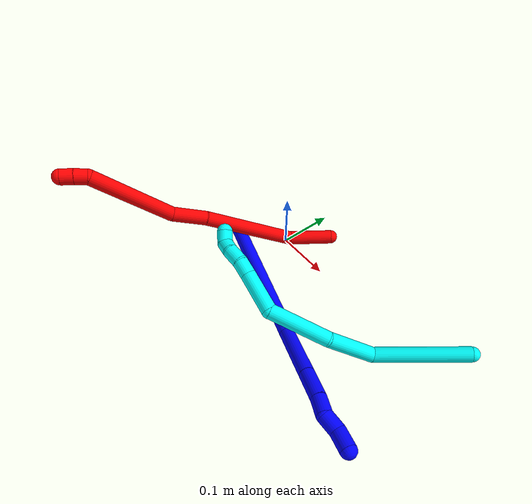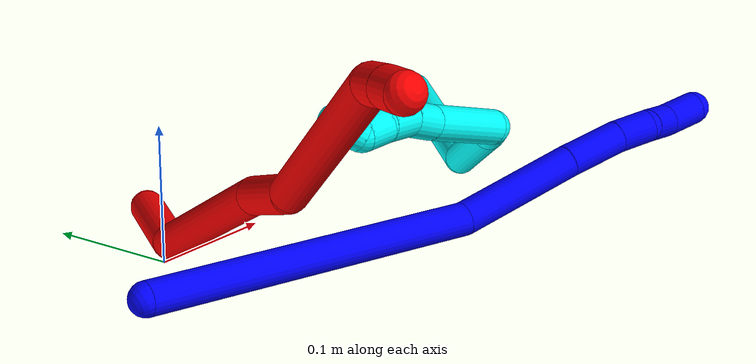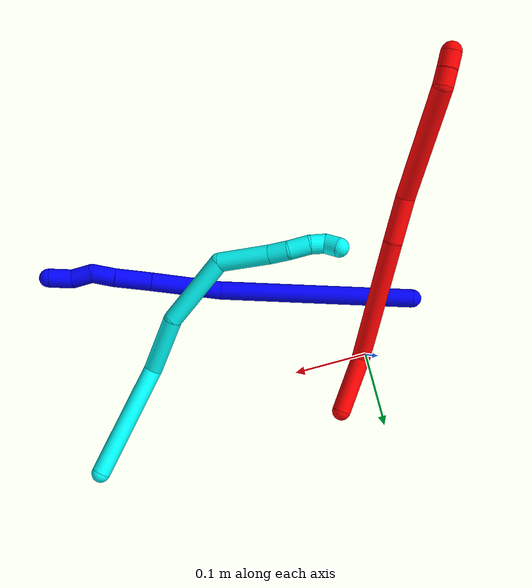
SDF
<sdf version="1.7">
 <world name="default">
  <plugin name="TubeGeneratorPlugin" filename="libtube_generator_plugin.so"/>
  <model name="photoneo_s_sensor">
   <static>1</static>
   <pose>0 0 2 1.57079 1.57079 3.14159</pose>
   <link name="link">
    <inertial><mass>0.1</mass></inertial>
    <sensor name="sensor" type="depth">
     <update_rate>30</update_rate>
     <camera>
      <horizontal_fov>1.22</horizontal_fov>
      <image><width>1920</width><height>1200</height><format>B8G8R8</format></image>
      <clip><near>0.1</near><far>4</far></clip>
      <depth_camera><output>points</output></depth_camera>
     </camera>
     <plugin name="camera_plugin" filename="libgazebo_ros_depth_camera.so">
      <baseline>0.2</baseline>
      <alwaysOn>1</alwaysOn>
      <updateRate>0.0</updateRate>
      <cameraName>camera_ir</cameraName>
      <imageTopicName>/camera/color/image_raw</imageTopicName>
      <cameraInfoTopicName>/camera/color/camera_info</cameraInfoTopicName>
      <depthImageTopicName>/camera/depth/image_raw</depthImageTopicName>
      <depthImageCameraInfoTopicName>/camera/depth/camera_info</depthImageCameraInfoTopicName>
      <pointCloudTopicName>/camera/depth/points</pointCloudTopicName>
      <frameName>fr_optical</frameName>
      <pointCloudCutoff>0.1</pointCloudCutoff>
      <pointCloudCutoffMax>2.0</pointCloudCutoffMax>
      <distortionK1>0</distortionK1>
      <distortionK2>0</distortionK2>
      <distortionK3>0</distortionK3>
      <distortionT1>0</distortionT1>
      <distortionT2>0</distortionT2>
      <CxPrime>0</CxPrime>
      <Cx>0</Cx>
      <Cy>0</Cy>
      <focalLength>0</focalLength>
      <hackBaseline>0</hackBaseline>
     </plugin>
    </sensor>
   </link>
  </model>
  <gravity>0 0 -9.8</gravity>
  <magnetic_field>6e-06 2.3e-05 -4.2e-05</magnetic_field>
  <atmosphere type="adiabatic"/>
  <physics name="default_physics" default="0" type="ode">
   <max_step_size>0.003</max_step_size>
   <real_time_factor>1</real_time_factor>
   <real_time_update_rate>1000</real_time_update_rate>
   <max_contacts>10000</max_contacts>
   <ode>
    <solver>
     <type>quick</type>
     <iters>100</iters>
     <sor>1.3</sor>
     <use_dynamic_moi_rescaling>0</use_dynamic_moi_rescaling>
    </solver>
    <constraints>
     <contact_max_correcting_vel>0</contact_max_correcting_vel>
     <contact_surface_layer>0.001</contact_surface_layer>
     <cfm>0</cfm>
     <erp>0.2</erp>
    </constraints>
   </ode>
  </physics>
  <scene><ambient>0.4 0.4 0.4 1</ambient><background>0.7 0.7 0.7 1</background><shadows>0</shadows></scene>
  <audio><device>default</device></audio>
  <spherical_coordinates>
   <surface_model>EARTH_WGS84</surface_model>
   <latitude_deg>0</latitude_deg>
   <longitude_deg>0</longitude_deg>
   <elevation>0</elevation>
   <heading_deg>0</heading_deg>
  </spherical_coordinates>
  <model name="bin">
   <static>1</static>
   <link name="bottom">
    <collision name="collision-bottom">
     <pose>0 0 -0.01 0 -0 0</pose>
     <geometry><box><size>0.8 0.6 0.02</size></box></geometry>
     <surface>
      <friction><ode><mu>100</mu><mu2>100</mu2></ode></friction>
      <contact><collide_bitmask>65535</collide_bitmask></contact>
     </surface>
    </collision>
   </link>
   <link name="west_wall">
    <collision name="collision-west_wall">
     <pose>-0.41 0 0.1 0 -0 0</pose>
     <geometry><box><size>0.02 0.6 0.2</size></box></geometry>
     <surface>
      <friction><ode><mu>100</mu><mu2>100</mu2></ode></friction>
      <contact><collide_bitmask>65535</collide_bitmask></contact>
     </surface>
    </collision>
   </link>
   <link name="east_wall">
    <collision name="collision-east_wall">
     <pose>0.41 0 0.1 0 -0 0</pose>
     <geometry><box><size>0.02 0.6 0.2</size></box></geometry>
     <surface>
      <friction><ode><mu>100</mu><mu2>100</mu2></ode></friction>
      <contact><collide_bitmask>65535</collide_bitmask></contact>
     </surface>
    </collision>
   </link>
   <link name="south_wall">
    <collision name="collision-south_wall">
     <pose>0 -0.31 0.1 0 -0 0</pose>
     <geometry><box><size>0.8 0.02 0.2</size></box></geometry>
     <surface>
      <friction><ode><mu>100</mu><mu2>100</mu2></ode></friction>
      <contact><collide_bitmask>65535</collide_bitmask></contact>
     </surface>
    </collision>
   </link>
   <link name="north_wall">
    <collision name="collision-north_wall">
     <pose>0 0.31 0.1 0 -0 0</pose>
     <geometry><box><size>0.8 0.02 0.2</size></box></geometry>
     <surface>
      <friction><ode><mu>100</mu><mu2>100</mu2></ode></friction>
      <contact><collide_bitmask>65535</collide_bitmask></contact>
     </surface>
    </collision>
   </link>
  </model>
  <model name="1">
   <static>0</static>
   <link name="1">
    <collision name="collision-cylinder-e_1_1_4">
     <pose>0.038817 -0.012218 0.126364 0.096391 0.29673 0.014418</pose>
     <geometry><cylinder><radius>0.0125</radius><length>0.26551</length></cylinder></geometry>
     <surface>
      <friction><ode><mu>1.16</mu><mu2>1.16</mu2><slip1>0</slip1><slip2>0</slip2></ode></friction>
      <contact><ode><kp>1e+06</kp><kd>1</kd><max_vel>0</max_vel><min_depth>0.001</min_depth></ode></contact>
     </surface>
    </collision>
    <visual name="visual-cylinder-e_1_1_4">
     <pose>0.038817 -0.012218 0.126364 0.096391 0.29673 0.014418</pose>
     <geometry><cylinder><radius>0.0125</radius><length>0.26551</length></cylinder></geometry>
     <material><ambient>0 0 1 1</ambient></material>
    </visual>
    <collision name="collision-cylinder-e_2_4_5">
     <pose>0.078218 -0.025592 0.301768 0.023552 0.011907 0.00014</pose>
     <geometry><cylinder><radius>0.0125</radius><length>0.098113</length></cylinder></geometry>
     <surface>
      <friction><ode><mu>1.16</mu><mu2>1.16</mu2><slip1>0</slip1><slip2>0</slip2></ode></friction>
      <contact><ode><kp>1e+06</kp><kd>1</kd><max_vel>0</max_vel><min_depth>0.001</min_depth></ode></contact>
     </surface>
    </collision>
    <visual name="visual-cylinder-e_2_4_5">
     <pose>0.078218 -0.025592 0.301768 0.023552 0.011907 0.00014</pose>
     <geometry><cylinder><radius>0.0125</radius><length>0.098113</length></cylinder></geometry>
     <material><ambient>0 0 1 1</ambient></material>
    </visual>
    <collision name="collision-cylinder-e_3_5_6">
     <pose>0.08026 -0.027569 0.374896 0.034118 0.060422 0.001031</pose>
     <geometry><cylinder><radius>0.0125</radius><length>0.048294</length></cylinder></geometry>
     <surface>
      <friction><ode><mu>1.16</mu><mu2>1.16</mu2><slip1>0</slip1><slip2>0</slip2></ode></friction>
      <contact><ode><kp>1e+06</kp><kd>1</kd><max_vel>0</max_vel><min_depth>0.001</min_depth></ode></contact>
     </surface>
    </collision>
    <visual name="visual-cylinder-e_3_5_6">
     <pose>0.08026 -0.027569 0.374896 0.034118 0.060422 0.001031</pose>
     <geometry><cylinder><radius>0.0125</radius><length>0.048294</length></cylinder></geometry>
     <material><ambient>0 0 1 1</ambient></material>
    </visual>
    <collision name="collision-cylinder-e_4_6_7">
     <pose>0.082941 -0.030534 0.413456 0.14702 0.083429 0.006147</pose>
     <geometry><cylinder><radius>0.0125</radius><length>0.029359</length></cylinder></geometry>
     <surface>
      <friction><ode><mu>1.16</mu><mu2>1.16</mu2><slip1>0</slip1><slip2>0</slip2></ode></friction>
      <contact><ode><kp>1e+06</kp><kd>1</kd><max_vel>0</max_vel><min_depth>0.001</min_depth></ode></contact>
     </surface>
    </collision>
    <visual name="visual-cylinder-e_4_6_7">
     <pose>0.082941 -0.030534 0.413456 0.14702 0.083429 0.006147</pose>
     <geometry><cylinder><radius>0.0125</radius><length>0.029359</length></cylinder></geometry>
     <material><ambient>0 0 1 1</ambient></material>
    </visual>
    <collision name="collision-cylinder-e_5_7_8">
     <pose>0.090947 -0.030714 0.439786 -0.164067 0.513688 -0.043182</pose>
     <geometry><cylinder><radius>0.0125</radius><length>0.027604</length></cylinder></geometry>
     <surface>
      <friction><ode><mu>1.16</mu><mu2>1.16</mu2><slip1>0</slip1><slip2>0</slip2></ode></friction>
      <contact><ode><kp>1e+06</kp><kd>1</kd><max_vel>0</max_vel><min_depth>0.001</min_depth></ode></contact>
     </surface>
    </collision>
    <visual name="visual-cylinder-e_5_7_8">
     <pose>0.090947 -0.030714 0.439786 -0.164067 0.513688 -0.043182</pose>
     <geometry><cylinder><radius>0.0125</radius><length>0.027604</length></cylinder></geometry>
     <material><ambient>0 0 1 1</ambient></material>
    </visual>
    <collision name="collision-cylinder-e_6_8_2">
     <pose>0.100178 -0.028838 0.467011 0.00568 0.158082 0.00045</pose>
     <geometry><cylinder><radius>0.0125</radius><length>0.031119</length></cylinder></geometry>
     <surface>
      <friction><ode><mu>1.16</mu><mu2>1.16</mu2><slip1>0</slip1><slip2>0</slip2></ode></friction>
      <contact><ode><kp>1e+06</kp><kd>1</kd><max_vel>0</max_vel><min_depth>0.001</min_depth></ode></contact>
     </surface>
    </collision>
    <visual name="visual-cylinder-e_6_8_2">
     <pose>0.100178 -0.028838 0.467011 0.00568 0.158082 0.00045</pose>
     <geometry><cylinder><radius>0.0125</radius><length>0.031119</length></cylinder></geometry>
     <material><ambient>0 0 1 1</ambient></material>
    </visual>
    <collision name="collision-sphere-2">
     <pose>0.102628 -0.028925 0.482376 0 -0 0</pose>
     <geometry><sphere><radius>0.0125</radius></sphere></geometry>
     <surface>
      <friction><ode><mu>1.16</mu><mu2>1.16</mu2><slip1>0</slip1><slip2>0</slip2></ode></friction>
      <contact><ode><kp>1e+06</kp><kd>1</kd><max_vel>0</max_vel><min_depth>0.001</min_depth></ode></contact>
     </surface>
    </collision>
    <visual name="visual-sphere-2">
     <pose>0.102628 -0.028925 0.482376 0 -0 0</pose>
     <geometry><sphere><radius>0.0125</radius></sphere></geometry>
     <material><ambient>0 0 1 1</ambient></material>
    </visual>
    <collision name="collision-sphere-4">
     <pose>0.077634 -0.024437 0.252728 0 -0 0</pose>
     <geometry><sphere><radius>0.0125</radius></sphere></geometry>
     <surface>
      <friction><ode><mu>1.16</mu><mu2>1.16</mu2><slip1>0</slip1><slip2>0</slip2></ode></friction>
      <contact><ode><kp>1e+06</kp><kd>1</kd><max_vel>0</max_vel><min_depth>0.001</min_depth></ode></contact>
     </surface>
    </collision>
    <visual name="visual-sphere-4">
     <pose>0.077634 -0.024437 0.252728 0 -0 0</pose>
     <geometry><sphere><radius>0.0125</radius></sphere></geometry>
     <material><ambient>0 0 1 1</ambient></material>
    </visual>
    <collision name="collision-sphere-1">
     <geometry><sphere><radius>0.0125</radius></sphere></geometry>
     <surface>
      <friction><ode><mu>1.16</mu><mu2>1.16</mu2><slip1>0</slip1><slip2>0</slip2></ode></friction>
      <contact><ode><kp>1e+06</kp><kd>1</kd><max_vel>0</max_vel><min_depth>0.001</min_depth></ode></contact>
     </surface>
    </collision>
    <visual name="visual-sphere-1">
     <geometry><sphere><radius>0.0125</radius></sphere></geometry>
     <material><ambient>0 0 1 1</ambient></material>
    </visual>
    <collision name="collision-sphere-8">
     <pose>0.097729 -0.028751 0.451645 0 -0 0</pose>
     <geometry><sphere><radius>0.0125</radius></sphere></geometry>
     <surface>
      <friction><ode><mu>1.16</mu><mu2>1.16</mu2><slip1>0</slip1><slip2>0</slip2></ode></friction>
      <contact><ode><kp>1e+06</kp><kd>1</kd><max_vel>0</max_vel><min_depth>0.001</min_depth></ode></contact>
     </surface>
    </collision>
    <visual name="visual-sphere-8">
     <pose>0.097729 -0.028751 0.451645 0 -0 0</pose>
     <geometry><sphere><radius>0.0125</radius></sphere></geometry>
     <material><ambient>0 0 1 1</ambient></material>
    </visual>
    <collision name="collision-sphere-5">
     <pose>0.078802 -0.026747 0.350807 0 -0 0</pose>
     <geometry><sphere><radius>0.0125</radius></sphere></geometry>
     <surface>
      <friction><ode><mu>1.16</mu><mu2>1.16</mu2><slip1>0</slip1><slip2>0</slip2></ode></friction>
      <contact><ode><kp>1e+06</kp><kd>1</kd><max_vel>0</max_vel><min_depth>0.001</min_depth></ode></contact>
     </surface>
    </collision>
    <visual name="visual-sphere-5">
     <pose>0.078802 -0.026747 0.350807 0 -0 0</pose>
     <geometry><sphere><radius>0.0125</radius></sphere></geometry>
     <material><ambient>0 0 1 1</ambient></material>
    </visual>
    <collision name="collision-sphere-6">
     <pose>0.081718 -0.028391 0.398985 0 -0 0</pose>
     <geometry><sphere><radius>0.0125</radius></sphere></geometry>
     <surface>
      <friction><ode><mu>1.16</mu><mu2>1.16</mu2><slip1>0</slip1><slip2>0</slip2></ode></friction>
      <contact><ode><kp>1e+06</kp><kd>1</kd><max_vel>0</max_vel><min_depth>0.001</min_depth></ode></contact>
     </surface>
    </collision>
    <visual name="visual-sphere-6">
     <pose>0.081718 -0.028391 0.398985 0 -0 0</pose>
     <geometry><sphere><radius>0.0125</radius></sphere></geometry>
     <material><ambient>0 0 1 1</ambient></material>
    </visual>
    <collision name="collision-sphere-7">
     <pose>0.084165 -0.032677 0.427927 0 -0 0</pose>
     <geometry><sphere><radius>0.0125</radius></sphere></geometry>
     <surface>
      <friction><ode><mu>1.16</mu><mu2>1.16</mu2><slip1>0</slip1><slip2>0</slip2></ode></friction>
      <contact><ode><kp>1e+06</kp><kd>1</kd><max_vel>0</max_vel><min_depth>0.001</min_depth></ode></contact>
     </surface>
    </collision>
    <visual name="visual-sphere-7">
     <pose>0.084165 -0.032677 0.427927 0 -0 0</pose>
     <geometry><sphere><radius>0.0125</radius></sphere></geometry>
     <material><ambient>0 0 1 1</ambient></material>
    </visual>
    <inertial>
     <pose>0.059839 -0.019456 0.240151 0 -0 0</pose>
     <mass>0.5</mass>
     <inertia>
      <ixx>0.001634</ixx>
      <ixy>0</ixy>
      <ixz>0</ixz>
      <iyy>0.001686</iyy>
      <iyz>0</iyz>
      <izz>-0.000278</izz>
     </inertia>
    </inertial>
   </link>
   <pose>-0.081312 -0.0587 0.012457 0.960056 1.02124 0.683392</pose>
  </model>
  <model name="2">
   <static>0</static>
   <link name="2">
    <collision name="collision-cylinder-e_1_1_4">
     <pose>0.001722 -0.021788 0.032395 0.592086 0.044074 0.013445</pose>
     <geometry><cylinder><radius>0.0125</radius><length>0.078157</length></cylinder></geometry>
     <surface>
      <friction><ode><mu>1.16</mu><mu2>1.16</mu2><slip1>0</slip1><slip2>0</slip2></ode></friction>
      <contact><ode><kp>1e+06</kp><kd>1</kd><max_vel>0</max_vel><min_depth>0.001</min_depth></ode></contact>
     </surface>
    </collision>
    <visual name="visual-cylinder-e_1_1_4">
     <pose>0.001722 -0.021788 0.032395 0.592086 0.044074 0.013445</pose>
     <geometry><cylinder><radius>0.0125</radius><length>0.078157</length></cylinder></geometry>
     <material><ambient>1 0 0 1</ambient></material>
    </visual>
    <collision name="collision-cylinder-e_2_4_5">
     <pose>-0.009505 -0.053147 0.149475 0.11253 -0.150783 -0.008509</pose>
     <geometry><cylinder><radius>0.0125</radius><length>0.172403</length></cylinder></geometry>
     <surface>
      <friction><ode><mu>1.16</mu><mu2>1.16</mu2><slip1>0</slip1><slip2>0</slip2></ode></friction>
      <contact><ode><kp>1e+06</kp><kd>1</kd><max_vel>0</max_vel><min_depth>0.001</min_depth></ode></contact>
     </surface>
    </collision>
    <visual name="visual-cylinder-e_2_4_5">
     <pose>-0.009505 -0.053147 0.149475 0.11253 -0.150783 -0.008509</pose>
     <geometry><cylinder><radius>0.0125</radius><length>0.172403</length></cylinder></geometry>
     <material><ambient>1 0 0 1</ambient></material>
    </visual>
    <collision name="collision-cylinder-e_3_5_6">
     <pose>-0.024428 -0.070558 0.262883 0.266489 -0.066222 -0.00888</pose>
     <geometry><cylinder><radius>0.0125</radius><length>0.059682</length></cylinder></geometry>
     <surface>
      <friction><ode><mu>1.16</mu><mu2>1.16</mu2><slip1>0</slip1><slip2>0</slip2></ode></friction>
      <contact><ode><kp>1e+06</kp><kd>1</kd><max_vel>0</max_vel><min_depth>0.001</min_depth></ode></contact>
     </surface>
    </collision>
    <visual name="visual-cylinder-e_3_5_6">
     <pose>-0.024428 -0.070558 0.262883 0.266489 -0.066222 -0.00888</pose>
     <geometry><cylinder><radius>0.0125</radius><length>0.059682</length></cylinder></geometry>
     <material><ambient>1 0 0 1</ambient></material>
    </visual>
    <collision name="collision-cylinder-e_4_6_7">
     <pose>-0.048446 -0.074509 0.362535 -0.054787 -0.3009 0.008307</pose>
     <geometry><cylinder><radius>0.0125</radius><length>0.14875</length></cylinder></geometry>
     <surface>
      <friction><ode><mu>1.16</mu><mu2>1.16</mu2><slip1>0</slip1><slip2>0</slip2></ode></friction>
      <contact><ode><kp>1e+06</kp><kd>1</kd><max_vel>0</max_vel><min_depth>0.001</min_depth></ode></contact>
     </surface>
    </collision>
    <visual name="visual-cylinder-e_4_6_7">
     <pose>-0.048446 -0.074509 0.362535 -0.054787 -0.3009 0.008307</pose>
     <geometry><cylinder><radius>0.0125</radius><length>0.14875</length></cylinder></geometry>
     <material><ambient>1 0 0 1</ambient></material>
    </visual>
    <collision name="collision-cylinder-e_5_7_8">
     <pose>-0.070141 -0.074438 0.443061 0.37853 0.03374 0.006464</pose>
     <geometry><cylinder><radius>0.0125</radius><length>0.020674</length></cylinder></geometry>
     <surface>
      <friction><ode><mu>1.16</mu><mu2>1.16</mu2><slip1>0</slip1><slip2>0</slip2></ode></friction>
      <contact><ode><kp>1e+06</kp><kd>1</kd><max_vel>0</max_vel><min_depth>0.001</min_depth></ode></contact>
     </surface>
    </collision>
    <visual name="visual-cylinder-e_5_7_8">
     <pose>-0.070141 -0.074438 0.443061 0.37853 0.03374 0.006464</pose>
     <geometry><cylinder><radius>0.0125</radius><length>0.020674</length></cylinder></geometry>
     <material><ambient>1 0 0 1</ambient></material>
    </visual>
    <collision name="collision-cylinder-e_6_8_2">
     <pose>-0.068935 -0.082456 0.46188 0.427515 0.084352 0.018321</pose>
     <geometry><cylinder><radius>0.0125</radius><length>0.020334</length></cylinder></geometry>
     <surface>
      <friction><ode><mu>1.16</mu><mu2>1.16</mu2><slip1>0</slip1><slip2>0</slip2></ode></friction>
      <contact><ode><kp>1e+06</kp><kd>1</kd><max_vel>0</max_vel><min_depth>0.001</min_depth></ode></contact>
     </surface>
    </collision>
    <visual name="visual-cylinder-e_6_8_2">
     <pose>-0.068935 -0.082456 0.46188 0.427515 0.084352 0.018321</pose>
     <geometry><cylinder><radius>0.0125</radius><length>0.020334</length></cylinder></geometry>
     <material><ambient>1 0 0 1</ambient></material>
    </visual>
    <collision name="collision-sphere-2">
     <pose>-0.068079 -0.086656 0.471099 0 -0 0</pose>
     <geometry><sphere><radius>0.0125</radius></sphere></geometry>
     <surface>
      <friction><ode><mu>1.16</mu><mu2>1.16</mu2><slip1>0</slip1><slip2>0</slip2></ode></friction>
      <contact><ode><kp>1e+06</kp><kd>1</kd><max_vel>0</max_vel><min_depth>0.001</min_depth></ode></contact>
     </surface>
    </collision>
    <visual name="visual-sphere-2">
     <pose>-0.068079 -0.086656 0.471099 0 -0 0</pose>
     <geometry><sphere><radius>0.0125</radius></sphere></geometry>
     <material><ambient>1 0 0 1</ambient></material>
    </visual>
    <collision name="collision-sphere-4">
     <pose>0.003444 -0.043577 0.06479 0 -0 0</pose>
     <geometry><sphere><radius>0.0125</radius></sphere></geometry>
     <surface>
      <friction><ode><mu>1.16</mu><mu2>1.16</mu2><slip1>0</slip1><slip2>0</slip2></ode></friction>
      <contact><ode><kp>1e+06</kp><kd>1</kd><max_vel>0</max_vel><min_depth>0.001</min_depth></ode></contact>
     </surface>
    </collision>
    <visual name="visual-sphere-4">
     <pose>0.003444 -0.043577 0.06479 0 -0 0</pose>
     <geometry><sphere><radius>0.0125</radius></sphere></geometry>
     <material><ambient>1 0 0 1</ambient></material>
    </visual>
    <collision name="collision-sphere-1">
     <geometry><sphere><radius>0.0125</radius></sphere></geometry>
     <surface>
      <friction><ode><mu>1.16</mu><mu2>1.16</mu2><slip1>0</slip1><slip2>0</slip2></ode></friction>
      <contact><ode><kp>1e+06</kp><kd>1</kd><max_vel>0</max_vel><min_depth>0.001</min_depth></ode></contact>
     </surface>
    </collision>
    <visual name="visual-sphere-1">
     <geometry><sphere><radius>0.0125</radius></sphere></geometry>
     <material><ambient>1 0 0 1</ambient></material>
    </visual>
    <collision name="collision-sphere-8">
     <pose>-0.069792 -0.078256 0.452661 0 -0 0</pose>
     <geometry><sphere><radius>0.0125</radius></sphere></geometry>
     <surface>
      <friction><ode><mu>1.16</mu><mu2>1.16</mu2><slip1>0</slip1><slip2>0</slip2></ode></friction>
      <contact><ode><kp>1e+06</kp><kd>1</kd><max_vel>0</max_vel><min_depth>0.001</min_depth></ode></contact>
     </surface>
    </collision>
    <visual name="visual-sphere-8">
     <pose>-0.069792 -0.078256 0.452661 0 -0 0</pose>
     <geometry><sphere><radius>0.0125</radius></sphere></geometry>
     <material><ambient>1 0 0 1</ambient></material>
    </visual>
    <collision name="collision-sphere-5">
     <pose>-0.022454 -0.062717 0.234159 0 -0 0</pose>
     <geometry><sphere><radius>0.0125</radius></sphere></geometry>
     <surface>
      <friction><ode><mu>1.16</mu><mu2>1.16</mu2><slip1>0</slip1><slip2>0</slip2></ode></friction>
      <contact><ode><kp>1e+06</kp><kd>1</kd><max_vel>0</max_vel><min_depth>0.001</min_depth></ode></contact>
     </surface>
    </collision>
    <visual name="visual-sphere-5">
     <pose>-0.022454 -0.062717 0.234159 0 -0 0</pose>
     <geometry><sphere><radius>0.0125</radius></sphere></geometry>
     <material><ambient>1 0 0 1</ambient></material>
    </visual>
    <collision name="collision-sphere-6">
     <pose>-0.026403 -0.078399 0.291608 0 -0 0</pose>
     <geometry><sphere><radius>0.0125</radius></sphere></geometry>
     <surface>
      <friction><ode><mu>1.16</mu><mu2>1.16</mu2><slip1>0</slip1><slip2>0</slip2></ode></friction>
      <contact><ode><kp>1e+06</kp><kd>1</kd><max_vel>0</max_vel><min_depth>0.001</min_depth></ode></contact>
     </surface>
    </collision>
    <visual name="visual-sphere-6">
     <pose>-0.026403 -0.078399 0.291608 0 -0 0</pose>
     <geometry><sphere><radius>0.0125</radius></sphere></geometry>
     <material><ambient>1 0 0 1</ambient></material>
    </visual>
    <collision name="collision-sphere-7">
     <pose>-0.070489 -0.07062 0.433461 0 -0 0</pose>
     <geometry><sphere><radius>0.0125</radius></sphere></geometry>
     <surface>
      <friction><ode><mu>1.16</mu><mu2>1.16</mu2><slip1>0</slip1><slip2>0</slip2></ode></friction>
      <contact><ode><kp>1e+06</kp><kd>1</kd><max_vel>0</max_vel><min_depth>0.001</min_depth></ode></contact>
     </surface>
    </collision>
    <visual name="visual-sphere-7">
     <pose>-0.070489 -0.07062 0.433461 0 -0 0</pose>
     <geometry><sphere><radius>0.0125</radius></sphere></geometry>
     <material><ambient>1 0 0 1</ambient></material>
    </visual>
    <inertial>
     <pose>-0.02604 -0.058751 0.23294 0 -0 0</pose>
     <mass>0.5</mass>
     <inertia>
      <ixx>0.000756</ixx>
      <ixy>0</ixy>
      <ixz>0</ixz>
      <iyy>0.000761</iyy>
      <iyz>0</iyz>
      <izz>0.000248</izz>
     </inertia>
    </inertial>
   </link>
   <pose>0.053879 0.06516 0.01242 0.944497 0.68749 -0.677676</pose>
  </model>
  <model name="3">
   <static>0</static>
   <link name="3">
    <collision name="collision-cylinder-e_1_1_4">
     <pose>-0.009611 -0.044336 -0.062075 2.52137 -0.125333 -0.386739</pose>
     <geometry><cylinder><radius>0.0125</radius><length>0.153771</length></cylinder></geometry>
     <surface>
      <friction><ode><mu>1.16</mu><mu2>1.16</mu2><slip1>0</slip1><slip2>0</slip2></ode></friction>
      <contact><ode><kp>1e+06</kp><kd>1</kd><max_vel>0</max_vel><min_depth>0.001</min_depth></ode></contact>
     </surface>
    </collision>
    <visual name="visual-cylinder-e_1_1_4">
     <pose>-0.009611 -0.044336 -0.062075 2.52137 -0.125333 -0.386739</pose>
     <geometry><cylinder><radius>0.0125</radius><length>0.153771</length></cylinder></geometry>
     <material><ambient>0.003922 1 0.996078 1</ambient></material>
    </visual>
    <collision name="collision-cylinder-e_2_4_5">
     <pose>-0.04839 -0.105907 -0.150109 2.5555 -0.752404 -1.83698</pose>
     <geometry><cylinder><radius>0.0125</radius><length>0.085362</length></cylinder></geometry>
     <surface>
      <friction><ode><mu>1.16</mu><mu2>1.16</mu2><slip1>0</slip1><slip2>0</slip2></ode></friction>
      <contact><ode><kp>1e+06</kp><kd>1</kd><max_vel>0</max_vel><min_depth>0.001</min_depth></ode></contact>
     </surface>
    </collision>
    <visual name="visual-cylinder-e_2_4_5">
     <pose>-0.04839 -0.105907 -0.150109 2.5555 -0.752404 -1.83698</pose>
     <geometry><cylinder><radius>0.0125</radius><length>0.085362</length></cylinder></geometry>
     <material><ambient>0.003922 1 0.996078 1</ambient></material>
    </visual>
    <collision name="collision-cylinder-e_3_5_6">
     <pose>-0.103451 -0.135762 -0.217774 2.84775 -0.536167 -2.15329</pose>
     <geometry><cylinder><radius>0.0125</radius><length>0.101372</length></cylinder></geometry>
     <surface>
      <friction><ode><mu>1.16</mu><mu2>1.16</mu2><slip1>0</slip1><slip2>0</slip2></ode></friction>
      <contact><ode><kp>1e+06</kp><kd>1</kd><max_vel>0</max_vel><min_depth>0.001</min_depth></ode></contact>
     </surface>
    </collision>
    <visual name="visual-cylinder-e_3_5_6">
     <pose>-0.103451 -0.135762 -0.217774 2.84775 -0.536167 -2.15329</pose>
     <geometry><cylinder><radius>0.0125</radius><length>0.101372</length></cylinder></geometry>
     <material><ambient>0.003922 1 0.996078 1</ambient></material>
    </visual>
    <collision name="collision-cylinder-e_4_6_7">
     <pose>-0.139617 -0.134796 -0.288419 -2.70269 -0.310945 1.22509</pose>
     <geometry><cylinder><radius>0.0125</radius><length>0.06716</length></cylinder></geometry>
     <surface>
      <friction><ode><mu>1.16</mu><mu2>1.16</mu2><slip1>0</slip1><slip2>0</slip2></ode></friction>
      <contact><ode><kp>1e+06</kp><kd>1</kd><max_vel>0</max_vel><min_depth>0.001</min_depth></ode></contact>
     </surface>
    </collision>
    <visual name="visual-cylinder-e_4_6_7">
     <pose>-0.139617 -0.134796 -0.288419 -2.70269 -0.310945 1.22509</pose>
     <geometry><cylinder><radius>0.0125</radius><length>0.06716</length></cylinder></geometry>
     <material><ambient>0.003922 1 0.996078 1</ambient></material>
    </visual>
    <collision name="collision-cylinder-e_5_7_8">
     <pose>-0.154664 -0.116544 -0.328163 -2.73388 -0.38523 1.5126</pose>
     <geometry><cylinder><radius>0.0125</radius><length>0.025402</length></cylinder></geometry>
     <surface>
      <friction><ode><mu>1.16</mu><mu2>1.16</mu2><slip1>0</slip1><slip2>0</slip2></ode></friction>
      <contact><ode><kp>1e+06</kp><kd>1</kd><max_vel>0</max_vel><min_depth>0.001</min_depth></ode></contact>
     </surface>
    </collision>
    <visual name="visual-cylinder-e_5_7_8">
     <pose>-0.154664 -0.116544 -0.328163 -2.73388 -0.38523 1.5126</pose>
     <geometry><cylinder><radius>0.0125</radius><length>0.025402</length></cylinder></geometry>
     <material><ambient>0.003922 1 0.996078 1</ambient></material>
    </visual>
    <collision name="collision-cylinder-e_6_8_9">
     <pose>-0.161539 -0.108413 -0.351803 -2.878 -0.156831 1.07015</pose>
     <geometry><cylinder><radius>0.0125</radius><length>0.026917</length></cylinder></geometry>
     <surface>
      <friction><ode><mu>1.16</mu><mu2>1.16</mu2><slip1>0</slip1><slip2>0</slip2></ode></friction>
      <contact><ode><kp>1e+06</kp><kd>1</kd><max_vel>0</max_vel><min_depth>0.001</min_depth></ode></contact>
     </surface>
    </collision>
    <visual name="visual-cylinder-e_6_8_9">
     <pose>-0.161539 -0.108413 -0.351803 -2.878 -0.156831 1.07015</pose>
     <geometry><cylinder><radius>0.0125</radius><length>0.026917</length></cylinder></geometry>
     <material><ambient>0.003922 1 0.996078 1</ambient></material>
    </visual>
    <collision name="collision-cylinder-e_7_9_10">
     <pose>-0.163149 -0.101054 -0.373835 -2.74095 0.049187 -0.24112</pose>
     <geometry><cylinder><radius>0.0125</radius><length>0.020002</length></cylinder></geometry>
     <surface>
      <friction><ode><mu>1.16</mu><mu2>1.16</mu2><slip1>0</slip1><slip2>0</slip2></ode></friction>
      <contact><ode><kp>1e+06</kp><kd>1</kd><max_vel>0</max_vel><min_depth>0.001</min_depth></ode></contact>
     </surface>
    </collision>
    <visual name="visual-cylinder-e_7_9_10">
     <pose>-0.163149 -0.101054 -0.373835 -2.74095 0.049187 -0.24112</pose>
     <geometry><cylinder><radius>0.0125</radius><length>0.020002</length></cylinder></geometry>
     <material><ambient>0.003922 1 0.996078 1</ambient></material>
    </visual>
    <collision name="collision-cylinder-e_8_10_2">
     <pose>-0.166862 -0.089652 -0.388144 -2.16857 -0.433632 0.789248</pose>
     <geometry><cylinder><radius>0.0125</radius><length>0.020015</length></cylinder></geometry>
     <surface>
      <friction><ode><mu>1.16</mu><mu2>1.16</mu2><slip1>0</slip1><slip2>0</slip2></ode></friction>
      <contact><ode><kp>1e+06</kp><kd>1</kd><max_vel>0</max_vel><min_depth>0.001</min_depth></ode></contact>
     </surface>
    </collision>
    <visual name="visual-cylinder-e_8_10_2">
     <pose>-0.166862 -0.089652 -0.388144 -2.16857 -0.433632 0.789248</pose>
     <geometry><cylinder><radius>0.0125</radius><length>0.020015</length></cylinder></geometry>
     <material><ambient>0.003922 1 0.996078 1</ambient></material>
    </visual>
    <collision name="collision-sphere-2">
     <pose>-0.171067 -0.082146 -0.393254 0 -0 0</pose>
     <geometry><sphere><radius>0.0125</radius></sphere></geometry>
     <surface>
      <friction><ode><mu>1.16</mu><mu2>1.16</mu2><slip1>0</slip1><slip2>0</slip2></ode></friction>
      <contact><ode><kp>1e+06</kp><kd>1</kd><max_vel>0</max_vel><min_depth>0.001</min_depth></ode></contact>
     </surface>
    </collision>
    <visual name="visual-sphere-2">
     <pose>-0.171067 -0.082146 -0.393254 0 -0 0</pose>
     <geometry><sphere><radius>0.0125</radius></sphere></geometry>
     <material><ambient>0.003922 1 0.996078 1</ambient></material>
    </visual>
    <collision name="collision-sphere-10">
     <pose>-0.162658 -0.097158 -0.383033 0 -0 0</pose>
     <geometry><sphere><radius>0.0125</radius></sphere></geometry>
     <surface>
      <friction><ode><mu>1.16</mu><mu2>1.16</mu2><slip1>0</slip1><slip2>0</slip2></ode></friction>
      <contact><ode><kp>1e+06</kp><kd>1</kd><max_vel>0</max_vel><min_depth>0.001</min_depth></ode></contact>
     </surface>
    </collision>
    <visual name="visual-sphere-10">
     <pose>-0.162658 -0.097158 -0.383033 0 -0 0</pose>
     <geometry><sphere><radius>0.0125</radius></sphere></geometry>
     <material><ambient>0.003922 1 0.996078 1</ambient></material>
    </visual>
    <collision name="collision-sphere-9">
     <pose>-0.163641 -0.10495 -0.364637 0 -0 0</pose>
     <geometry><sphere><radius>0.0125</radius></sphere></geometry>
     <surface>
      <friction><ode><mu>1.16</mu><mu2>1.16</mu2><slip1>0</slip1><slip2>0</slip2></ode></friction>
      <contact><ode><kp>1e+06</kp><kd>1</kd><max_vel>0</max_vel><min_depth>0.001</min_depth></ode></contact>
     </surface>
    </collision>
    <visual name="visual-sphere-9">
     <pose>-0.163641 -0.10495 -0.364637 0 -0 0</pose>
     <geometry><sphere><radius>0.0125</radius></sphere></geometry>
     <material><ambient>0.003922 1 0.996078 1</ambient></material>
    </visual>
    <collision name="collision-sphere-4">
     <pose>-0.019222 -0.088673 -0.12415 0 -0 0</pose>
     <geometry><sphere><radius>0.0125</radius></sphere></geometry>
     <surface>
      <friction><ode><mu>1.16</mu><mu2>1.16</mu2><slip1>0</slip1><slip2>0</slip2></ode></friction>
      <contact><ode><kp>1e+06</kp><kd>1</kd><max_vel>0</max_vel><min_depth>0.001</min_depth></ode></contact>
     </surface>
    </collision>
    <visual name="visual-sphere-4">
     <pose>-0.019222 -0.088673 -0.12415 0 -0 0</pose>
     <geometry><sphere><radius>0.0125</radius></sphere></geometry>
     <material><ambient>0.003922 1 0.996078 1</ambient></material>
    </visual>
    <collision name="collision-sphere-1">
     <geometry><sphere><radius>0.0125</radius></sphere></geometry>
     <surface>
      <friction><ode><mu>1.16</mu><mu2>1.16</mu2><slip1>0</slip1><slip2>0</slip2></ode></friction>
      <contact><ode><kp>1e+06</kp><kd>1</kd><max_vel>0</max_vel><min_depth>0.001</min_depth></ode></contact>
     </surface>
    </collision>
    <visual name="visual-sphere-1">
     <geometry><sphere><radius>0.0125</radius></sphere></geometry>
     <material><ambient>0.003922 1 0.996078 1</ambient></material>
    </visual>
    <collision name="collision-sphere-8">
     <pose>-0.159437 -0.111877 -0.338969 0 -0 0</pose>
     <geometry><sphere><radius>0.0125</radius></sphere></geometry>
     <surface>
      <friction><ode><mu>1.16</mu><mu2>1.16</mu2><slip1>0</slip1><slip2>0</slip2></ode></friction>
      <contact><ode><kp>1e+06</kp><kd>1</kd><max_vel>0</max_vel><min_depth>0.001</min_depth></ode></contact>
     </surface>
    </collision>
    <visual name="visual-sphere-8">
     <pose>-0.159437 -0.111877 -0.338969 0 -0 0</pose>
     <geometry><sphere><radius>0.0125</radius></sphere></geometry>
     <material><ambient>0.003922 1 0.996078 1</ambient></material>
    </visual>
    <collision name="collision-sphere-5">
     <pose>-0.077558 -0.123141 -0.176068 0 -0 0</pose>
     <geometry><sphere><radius>0.0125</radius></sphere></geometry>
     <surface>
      <friction><ode><mu>1.16</mu><mu2>1.16</mu2><slip1>0</slip1><slip2>0</slip2></ode></friction>
      <contact><ode><kp>1e+06</kp><kd>1</kd><max_vel>0</max_vel><min_depth>0.001</min_depth></ode></contact>
     </surface>
    </collision>
    <visual name="visual-sphere-5">
     <pose>-0.077558 -0.123141 -0.176068 0 -0 0</pose>
     <geometry><sphere><radius>0.0125</radius></sphere></geometry>
     <material><ambient>0.003922 1 0.996078 1</ambient></material>
    </visual>
    <collision name="collision-sphere-6">
     <pose>-0.129343 -0.148382 -0.259479 0 -0 0</pose>
     <geometry><sphere><radius>0.0125</radius></sphere></geometry>
     <surface>
      <friction><ode><mu>1.16</mu><mu2>1.16</mu2><slip1>0</slip1><slip2>0</slip2></ode></friction>
      <contact><ode><kp>1e+06</kp><kd>1</kd><max_vel>0</max_vel><min_depth>0.001</min_depth></ode></contact>
     </surface>
    </collision>
    <visual name="visual-sphere-6">
     <pose>-0.129343 -0.148382 -0.259479 0 -0 0</pose>
     <geometry><sphere><radius>0.0125</radius></sphere></geometry>
     <material><ambient>0.003922 1 0.996078 1</ambient></material>
    </visual>
    <collision name="collision-sphere-7">
     <pose>-0.149892 -0.121211 -0.317358 0 -0 0</pose>
     <geometry><sphere><radius>0.0125</radius></sphere></geometry>
     <surface>
      <friction><ode><mu>1.16</mu><mu2>1.16</mu2><slip1>0</slip1><slip2>0</slip2></ode></friction>
      <contact><ode><kp>1e+06</kp><kd>1</kd><max_vel>0</max_vel><min_depth>0.001</min_depth></ode></contact>
     </surface>
    </collision>
    <visual name="visual-sphere-7">
     <pose>-0.149892 -0.121211 -0.317358 0 -0 0</pose>
     <geometry><sphere><radius>0.0125</radius></sphere></geometry>
     <material><ambient>0.003922 1 0.996078 1</ambient></material>
    </visual>
    <inertial>
     <pose>-0.080704 -0.096735 -0.193713 0 -0 0</pose>
     <mass>0.5</mass>
     <inertia><ixx>4e-05</ixx><ixy>0</ixy><ixz>0</ixz><iyy>-0.000337</iyy><iyz>0</iyz><izz>0.000311</izz></inertia>
    </inertial>
   </link>
   <pose>0.388289 0.060168 0.027607 0.975966 1.33059 1.21483</pose>
  </model>
 </world>
</sdf>
